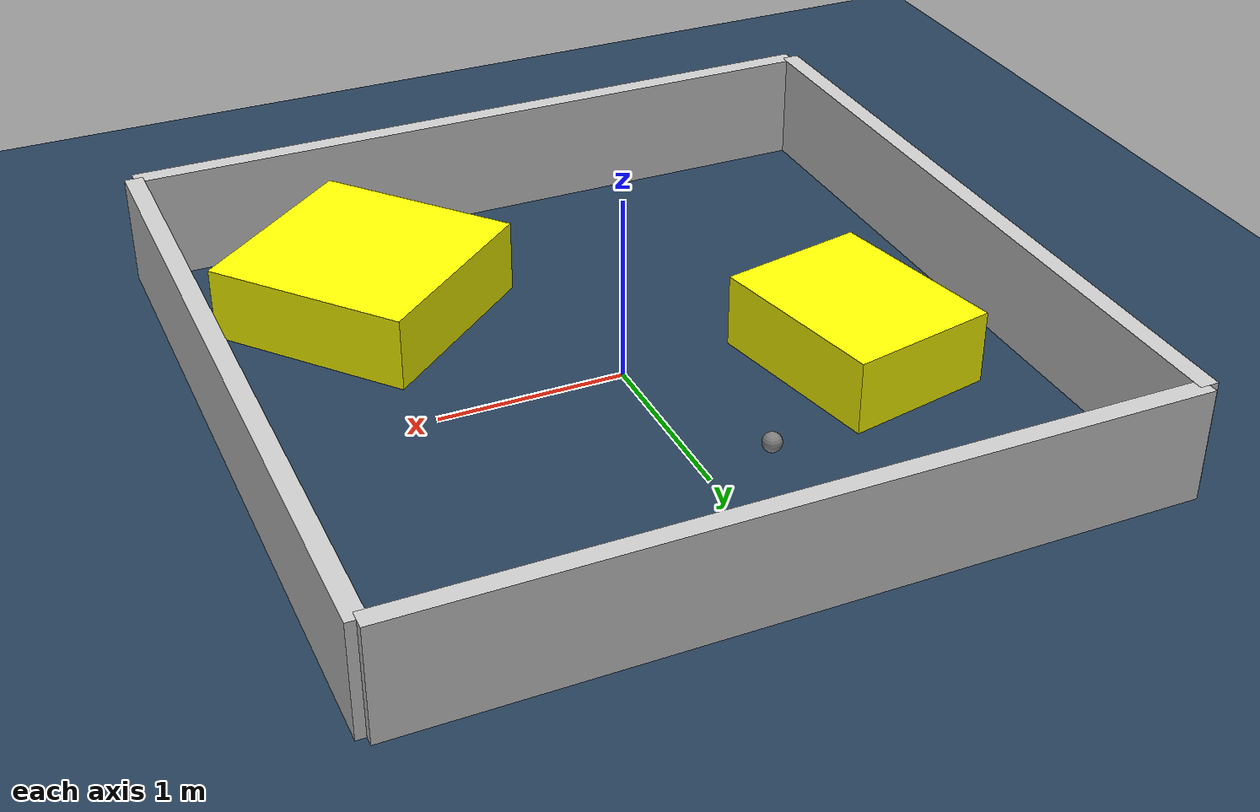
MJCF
<?xml version="1.0" ?>
<mujoco model="generated_environment">
  <option timestep="0.01" integrator="RK4" cone="elliptic"/>
  <default>
    <geom density="1"/>
  </default>
  <asset>
    <texture builtin="gradient" height="3072" rgb1="0.3 0.5 0.7" rgb2="0 0 0" type="skybox" width="512"/>
    <texture builtin="checker" height="300" mark="edge" markrgb="0.8 0.8 0.8" name="groundplane" rgb1="0.2 0.3 0.4" rgb2="0.1 0.2 0.3" type="2d" width="300"/>
    <material name="groundplane" reflectance="0.2" texrepeat="5 5" texture="groundplane" texuniform="true"/>
    <material name="robot" rgba="0.0 1.0 0.0 1"/>
  </asset>
  <worldbody>
    <light dir="0 0 -1" directional="true" pos="0 0 1.5"/>
    <geom condim="4" friction="1.0 0.005 0.001" material="groundplane" name="floor" size="0 0 0.05" type="plane"/>
    <body name="walls">
      <geom name="wall_1" condim="4" pos="-2.0 0.0 0.3" rgba="0.800000011920929 0.800000011920929 0.800000011920929 1.0" size="0.05 2.0 0.3" type="box"/>
      <geom name="wall_2" condim="4" pos="2.0 0.0 0.3" rgba="0.800000011920929 0.800000011920929 0.800000011920929 1.0" size="0.05 2.0 0.3" type="box"/>
      <geom name="wall_3" condim="4" pos="0.0 -2.0 0.3" rgba="0.800000011920929 0.800000011920929 0.800000011920929 1.0" size="2.0 0.05 0.3" type="box"/>
      <geom name="wall_4" condim="4" pos="0.0 2.0 0.3" rgba="0.800000011920929 0.800000011920929 0.800000011920929 1.0" size="2.0 0.05 0.3" type="box"/>
    </body>
    <body name="robot">
      <joint name="joint_x" type="slide" pos="0 0 0" axis="1 0 0"/>
      <joint name="joint_y" type="slide" pos="0 0 0" axis="0 1 0"/>
      <geom name="robot" type="sphere" pos="-0.27288518439441645 1.092978411928443 0.2" size="0.05" mass="5." friction="1.0 0.005 0.0001" condim="4"/>
      <site name="sensor_ball"/>
    </body>
    <body name="obstacle_1_movable">
      <geom name="obstacle_1_movable" condim="4" pos="-1.1285890138034833 0.36334157830435365 0.2" euler="0 0 281.58244266849204" friction="1.0 0.005 0.001" rgba="1 1 0 1" size="0.5151233200339211 0.4110246764390648 0.2" type="box" mass="0.1"/>
      <joint type="free"/>
    </body>
    <body name="obstacle_2_movable">
      <geom name="obstacle_2_movable" condim="4" pos="1.00542137602974 -1.1290587408829702 0.2" euler="0 0 39.97854943641088" friction="1.0 0.005 0.001" rgba="1 1 0 1" size="0.5676495374723803 0.5771968104564327 0.2" type="box" mass="0.1"/>
      <joint type="free"/>
    </body>
  </worldbody>
  <actuator>
    <motor name="actuator_x" joint="joint_x" gear="1" ctrlrange="-1 1"/>
    <motor name="actuator_y" joint="joint_y" gear="1" ctrlrange="-1 1"/>
  </actuator>
</mujoco>
